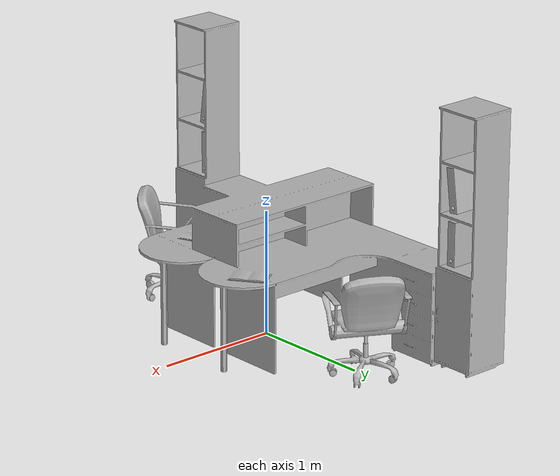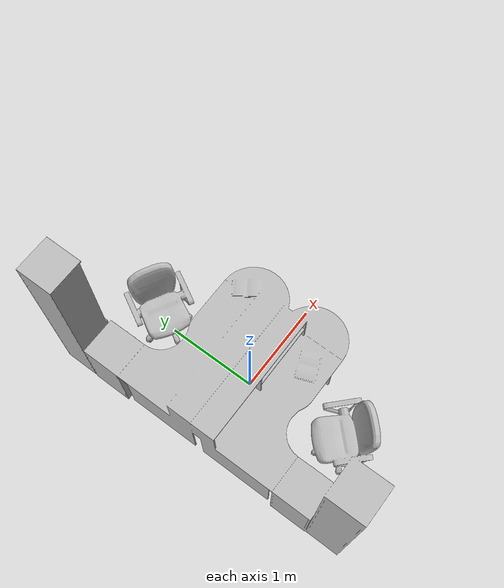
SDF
<?xml version='1.0'?>
<sdf version='1.4'>
  <model name='695'>
    <pose>0 0 0 0 0 0</pose>
    <static>true</static>
    <link name='link'>
      <collision name='collision'>
        <pose>0 0 0 0 0 0</pose>
        <geometry>
          <box>
            <size>1.7501 3.39494 2</size>
          </box>
        </geometry>
      </collision>
      <visual name='visual'>
        <pose>0 0 0 0 0 0</pose>
        <geometry>
          <mesh><uri>model://695/695.dae</uri></mesh>
        </geometry>
      </visual>
    </link>
  </model>
</sdf>
